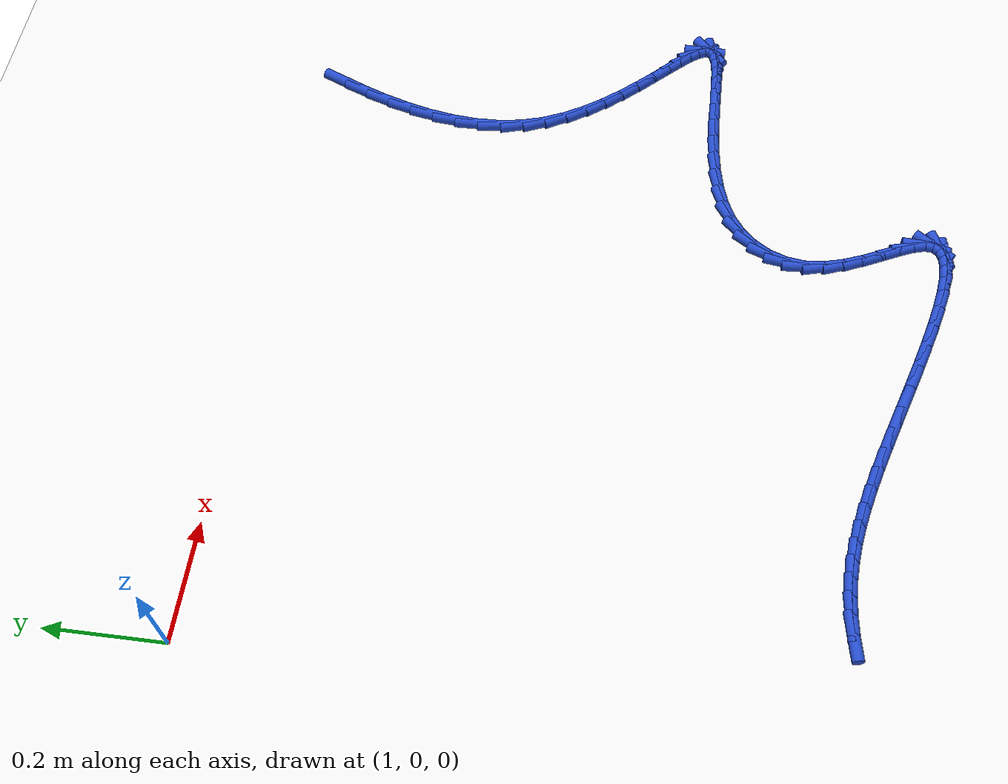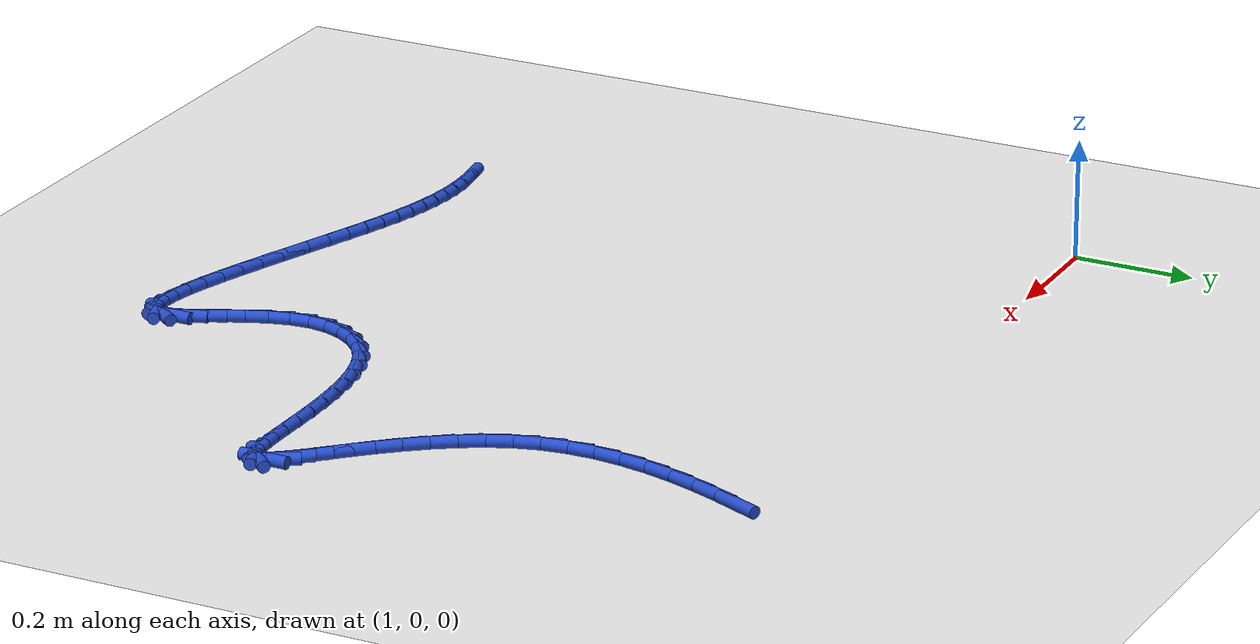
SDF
<sdf version="1.6">
 <world name="default">
  <model name="ground_plane">
   <static>1</static>
   <link name="link">
    <collision name="collision">
     <geometry><plane><normal>0 0 1</normal><size>100 100</size></plane></geometry>
     <surface><friction><ode><mu>100</mu><mu2>50</mu2></ode></friction></surface>
    </collision>
    <visual name="visual">
     <cast_shadows>0</cast_shadows>
     <geometry><plane><normal>0 0 1</normal><size>100 100</size></plane></geometry>
     <material>
      <script><uri>file://media/materials/scripts/gazebo.material</uri><name>Gazebo/WhiteGlow</name></script>
     </material>
    </visual>
   </link>
  </model>
  <model name="line">
   <link name="link_139">
    <pose>2.138984242095941 -0.04756108163555034 0.01 0 1.57 1.1612718402876032</pose>
    <collision name="collision">
     <geometry><cylinder><radius>0.01</radius><length>0.08</length></cylinder></geometry>
    </collision>
    <visual name="visual">
     <material>
      <script><name>Gazebo/Blue</name><uri>file://media/materials/scripts/gazebo.material</uri></script>
     </material>
     <geometry><cylinder><radius>0.01</radius><length>0.08</length></cylinder></geometry>
    </visual>
   </link>
   <link name="link_140">
    <pose>2.1193009865300003 -0.09290731103815346 0.01 0 1.57 1.205928437276966</pose>
    <collision name="collision">
     <geometry><cylinder><radius>0.01</radius><length>0.08</length></cylinder></geometry>
    </collision>
    <visual name="visual">
     <material>
      <script><name>Gazebo/Blue</name><uri>file://media/materials/scripts/gazebo.material</uri></script>
     </material>
     <geometry><cylinder><radius>0.01</radius><length>0.08</length></cylinder></geometry>
    </visual>
   </link>
   <link name="link_141">
    <pose>2.101809403302674 -0.138700312491776 0.01 0 1.57 1.258929012122388</pose>
    <collision name="collision">
     <geometry><cylinder><radius>0.01</radius><length>0.08</length></cylinder></geometry>
    </collision>
    <visual name="visual">
     <material>
      <script><name>Gazebo/Blue</name><uri>file://media/materials/scripts/gazebo.material</uri></script>
     </material>
     <geometry><cylinder><radius>0.01</radius><length>0.08</length></cylinder></geometry>
    </visual>
   </link>
   <link name="link_142">
    <pose>2.086998517815049 -0.18464154216332138 0.01 0 1.57 1.3218458355172413</pose>
    <collision name="collision">
     <geometry><cylinder><radius>0.01</radius><length>0.08</length></cylinder></geometry>
    </collision>
    <visual name="visual">
     <material>
      <script><name>Gazebo/Blue</name><uri>file://media/materials/scripts/gazebo.material</uri></script>
     </material>
     <geometry><cylinder><radius>0.01</radius><length>0.08</length></cylinder></geometry>
    </visual>
   </link>
   <link name="link_143">
    <pose>2.07535735546821 -0.23043245621969186 0.01 0 1.57 1.3965332176177274</pose>
    <collision name="collision">
     <geometry><cylinder><radius>0.01</radius><length>0.08</length></cylinder></geometry>
    </collision>
    <visual name="visual">
     <material>
      <script><name>Gazebo/Blue</name><uri>file://media/materials/scripts/gazebo.material</uri></script>
     </material>
     <geometry><cylinder><radius>0.01</radius><length>0.08</length></cylinder></geometry>
    </visual>
   </link>
   <link name="link_144">
    <pose>2.0673749416632456 -0.27577451082779003 0.01 0 1.57 1.4850185427366982</pose>
    <collision name="collision">
     <geometry><cylinder><radius>0.01</radius><length>0.08</length></cylinder></geometry>
    </collision>
    <visual name="visual">
     <material>
      <script><name>Gazebo/Blue</name><uri>file://media/materials/scripts/gazebo.material</uri></script>
     </material>
     <geometry><cylinder><radius>0.01</radius><length>0.08</length></cylinder></geometry>
    </visual>
   </link>
   <link name="link_145">
    <pose>2.0635403018012397 -0.32036916215451827 0.01 0 1.57 -1.5523785852462642</pose>
    <collision name="collision">
     <geometry><cylinder><radius>0.01</radius><length>0.08</length></cylinder></geometry>
    </collision>
    <visual name="visual">
     <material>
      <script><name>Gazebo/Blue</name><uri>file://media/materials/scripts/gazebo.material</uri></script>
     </material>
     <geometry><cylinder><radius>0.01</radius><length>0.08</length></cylinder></geometry>
    </visual>
   </link>
   <link name="link_146">
    <pose>2.0643424612832795 -0.36391786636678053 0.01 0 1.57 -1.4312497112007905</pose>
    <collision name="collision">
     <geometry><cylinder><radius>0.01</radius><length>0.08</length></cylinder></geometry>
    </collision>
    <visual name="visual">
     <material>
      <script><name>Gazebo/Blue</name><uri>file://media/materials/scripts/gazebo.material</uri></script>
     </material>
     <geometry><cylinder><radius>0.01</radius><length>0.08</length></cylinder></geometry>
    </visual>
   </link>
   <link name="link_147">
    <pose>2.070270445510451 -0.4061220796314765 0.01 0 1.57 -1.2950176132023836</pose>
    <collision name="collision">
     <geometry><cylinder><radius>0.01</radius><length>0.08</length></cylinder></geometry>
    </collision>
    <visual name="visual">
     <material>
      <script><name>Gazebo/Blue</name><uri>file://media/materials/scripts/gazebo.material</uri></script>
     </material>
     <geometry><cylinder><radius>0.01</radius><length>0.08</length></cylinder></geometry>
    </visual>
   </link>
   <link name="link_148">
    <pose>2.081750821995782 -0.44669028536464167 0.01 0 1.57 -1.1662987267644296</pose>
    <collision name="collision">
     <geometry><cylinder><radius>0.01</radius><length>0.08</length></cylinder></geometry>
    </collision>
    <visual name="visual">
     <material>
      <script><name>Gazebo/Blue</name><uri>file://media/materials/scripts/gazebo.material</uri></script>
     </material>
     <geometry><cylinder><radius>0.01</radius><length>0.08</length></cylinder></geometry>
    </visual>
   </link>
   <link name="link_149">
    <pose>2.0983352304117675 -0.48542940668462414 0.01 0 1.57 -1.060438001858014</pose>
    <collision name="collision">
     <geometry><cylinder><radius>0.01</radius><length>0.08</length></cylinder></geometry>
    </collision>
    <visual name="visual">
     <material>
      <script><name>Gazebo/Blue</name><uri>file://media/materials/scripts/gazebo.material</uri></script>
     </material>
     <geometry><cylinder><radius>0.01</radius><length>0.08</length></cylinder></geometry>
    </visual>
   </link>
   <link name="link_150">
    <pose>2.1189310394934 -0.5222188547897701 0.01 0 1.57 -0.9758007278964476</pose>
    <collision name="collision">
     <geometry><cylinder><radius>0.01</radius><length>0.08</length></cylinder></geometry>
    </collision>
    <visual name="visual">
     <material>
      <script><name>Gazebo/Blue</name><uri>file://media/materials/scripts/gazebo.material</uri></script>
     </material>
     <geometry><cylinder><radius>0.01</radius><length>0.08</length></cylinder></geometry>
    </visual>
   </link>
   <link name="link_151">
    <pose>2.1424306500066614 -0.5569397249514952 0.01 0 1.57 -0.9099051102946096</pose>
    <collision name="collision">
     <geometry><cylinder><radius>0.01</radius><length>0.08</length></cylinder></geometry>
    </collision>
    <visual name="visual">
     <material>
      <script><name>Gazebo/Blue</name><uri>file://media/materials/scripts/gazebo.material</uri></script>
     </material>
     <geometry><cylinder><radius>0.01</radius><length>0.08</length></cylinder></geometry>
    </visual>
   </link>
   <link name="link_152">
    <pose>2.1677264627175337 -0.5894731124412147 0.01 0 1.57 -0.8607308293462369</pose>
    <collision name="collision">
     <geometry><cylinder><radius>0.01</radius><length>0.08</length></cylinder></geometry>
    </collision>
    <visual name="visual">
     <material>
      <script><name>Gazebo/Blue</name><uri>file://media/materials/scripts/gazebo.material</uri></script>
     </material>
     <geometry><cylinder><radius>0.01</radius><length>0.08</length></cylinder></geometry>
    </visual>
   </link>
   <link name="link_153">
    <pose>2.193710878391997 -0.6197001125303441 0.01 0 1.57 -0.8272775209543222</pose>
    <collision name="collision">
     <geometry><cylinder><radius>0.01</radius><length>0.08</length></cylinder></geometry>
    </collision>
    <visual name="visual">
     <material>
      <script><name>Gazebo/Blue</name><uri>file://media/materials/scripts/gazebo.material</uri></script>
     </material>
     <geometry><cylinder><radius>0.01</radius><length>0.08</length></cylinder></geometry>
    </visual>
   </link>
   <link name="link_154">
    <pose>2.2192762977960356 -0.647501820490299 0.01 0 1.57 -0.8101147883234594</pose>
    <collision name="collision">
     <geometry><cylinder><radius>0.01</radius><length>0.08</length></cylinder></geometry>
    </collision>
    <visual name="visual">
     <material>
      <script><name>Gazebo/Blue</name><uri>file://media/materials/scripts/gazebo.material</uri></script>
     </material>
     <geometry><cylinder><radius>0.01</radius><length>0.08</length></cylinder></geometry>
    </visual>
   </link>
   <link name="link_155">
    <pose>2.2433151216956295 -0.6727593315924955 0.01 0 1.57 -0.81243262872116</pose>
    <collision name="collision">
     <geometry><cylinder><radius>0.01</radius><length>0.08</length></cylinder></geometry>
    </collision>
    <visual name="visual">
     <material>
      <script><name>Gazebo/Blue</name><uri>file://media/materials/scripts/gazebo.material</uri></script>
     </material>
     <geometry><cylinder><radius>0.01</radius><length>0.08</length></cylinder></geometry>
    </visual>
   </link>
   <link name="link_156">
    <pose>2.26471975085676 -0.6953537411083475 0.01 0 1.57 -0.8426950690854534</pose>
    <collision name="collision">
     <geometry><cylinder><radius>0.01</radius><length>0.08</length></cylinder></geometry>
    </collision>
    <visual name="visual">
     <material>
      <script><name>Gazebo/Blue</name><uri>file://media/materials/scripts/gazebo.material</uri></script>
     </material>
     <geometry><cylinder><radius>0.01</radius><length>0.08</length></cylinder></geometry>
    </visual>
   </link>
   <link name="link_157">
    <pose>2.282382586045409 -0.7151661443092715 0.01 0 1.57 -0.9224002661049109</pose>
    <collision name="collision">
     <geometry><cylinder><radius>0.01</radius><length>0.08</length></cylinder></geometry>
    </collision>
    <visual name="visual">
     <material>
      <script><name>Gazebo/Blue</name><uri>file://media/materials/scripts/gazebo.material</uri></script>
     </material>
     <geometry><cylinder><radius>0.01</radius><length>0.08</length></cylinder></geometry>
    </visual>
   </link>
   <link name="link_158">
    <pose>2.295196028027557 -0.7320776364666826 0.01 0 1.57 -1.1123097089898852</pose>
    <collision name="collision">
     <geometry><cylinder><radius>0.01</radius><length>0.08</length></cylinder></geometry>
    </collision>
    <visual name="visual">
     <material>
      <script><name>Gazebo/Blue</name><uri>file://media/materials/scripts/gazebo.material</uri></script>
     </material>
     <geometry><cylinder><radius>0.01</radius><length>0.08</length></cylinder></geometry>
    </visual>
   </link>
   <link name="link_159">
    <pose>2.3020524775691866 -0.7459693128519963 0.01 0 1.57 1.5514420073694277</pose>
    <collision name="collision">
     <geometry><cylinder><radius>0.01</radius><length>0.08</length></cylinder></geometry>
    </collision>
    <visual name="visual">
     <material>
      <script><name>Gazebo/Blue</name><uri>file://media/materials/scripts/gazebo.material</uri></script>
     </material>
     <geometry><cylinder><radius>0.01</radius><length>0.08</length></cylinder></geometry>
    </visual>
   </link>
   <link name="link_160">
    <pose>2.30184433543628 -0.7567222687366285 0.01 0 1.57 0.7495908297854952</pose>
    <collision name="collision">
     <geometry><cylinder><radius>0.01</radius><length>0.08</length></cylinder></geometry>
    </collision>
    <visual name="visual">
     <material>
      <script><name>Gazebo/Blue</name><uri>file://media/materials/scripts/gazebo.material</uri></script>
     </material>
     <geometry><cylinder><radius>0.01</radius><length>0.08</length></cylinder></geometry>
    </visual>
   </link>
   <link name="link_161">
    <pose>2.293702873798963 -0.7643006056107777 0.01 0 1.57 0.3012627442218821</pose>
    <collision name="collision">
     <geometry><cylinder><radius>0.01</radius><length>0.08</length></cylinder></geometry>
    </collision>
    <visual name="visual">
     <material>
      <script><name>Gazebo/Blue</name><uri>file://media/materials/scripts/gazebo.material</uri></script>
     </material>
     <geometry><cylinder><radius>0.01</radius><length>0.08</length></cylinder></geometry>
    </visual>
   </link>
   <link name="link_162">
    <pose>2.2781219526361554 -0.7691419151346919 0.01 0 1.57 0.12229955663601587</pose>
    <collision name="collision">
     <geometry><cylinder><radius>0.01</radius><length>0.08</length></cylinder></geometry>
    </collision>
    <visual name="visual">
     <material>
      <script><name>Gazebo/Blue</name><uri>file://media/materials/scripts/gazebo.material</uri></script>
     </material>
     <geometry><cylinder><radius>0.01</radius><length>0.08</length></cylinder></geometry>
    </visual>
   </link>
   <link name="link_163">
    <pose>2.256077840291057 -0.7718514226557567 0.01 0 1.57 0.042948717651577886</pose>
    <collision name="collision">
     <geometry><cylinder><radius>0.01</radius><length>0.08</length></cylinder></geometry>
    </collision>
    <visual name="visual">
     <material>
      <script><name>Gazebo/Blue</name><uri>file://media/materials/scripts/gazebo.material</uri></script>
     </material>
     <geometry><cylinder><radius>0.01</radius><length>0.08</length></cylinder></geometry>
    </visual>
   </link>
   <link name="link_164">
    <pose>2.2285473668865983 -0.7730345487360643 0.01 0 1.57 0.00818225079632332</pose>
    <collision name="collision">
     <geometry><cylinder><radius>0.01</radius><length>0.08</length></cylinder></geometry>
    </collision>
    <visual name="visual">
     <material>
      <script><name>Gazebo/Blue</name><uri>file://media/materials/scripts/gazebo.material</uri></script>
     </material>
     <geometry><cylinder><radius>0.01</radius><length>0.08</length></cylinder></geometry>
    </visual>
   </link>
   <link name="link_165">
    <pose>2.196507362545716 -0.7732967139377087 0.01 0 1.57 -0.00150045026485507</pose>
    <collision name="collision">
     <geometry><cylinder><radius>0.01</radius><length>0.08</length></cylinder></geometry>
    </collision>
    <visual name="visual">
     <material>
      <script><name>Gazebo/Blue</name><uri>file://media/materials/scripts/gazebo.material</uri></script>
     </material>
     <geometry><cylinder><radius>0.01</radius><length>0.08</length></cylinder></geometry>
    </visual>
   </link>
   <link name="link_166">
    <pose>2.1609346573913433 -0.7732433388227828 0.01 0 1.57 0.00620275193181548</pose>
    <collision name="collision">
     <geometry><cylinder><radius>0.01</radius><length>0.08</length></cylinder></geometry>
    </collision>
    <visual name="visual">
     <material>
      <script><name>Gazebo/Blue</name><uri>file://media/materials/scripts/gazebo.material</uri></script>
     </material>
     <geometry><cylinder><radius>0.01</radius><length>0.08</length></cylinder></geometry>
    </visual>
   </link>
   <link name="link_167">
    <pose>2.1228060815464107 -0.77347984395338 0.01 0 1.57 0.028495781870062402</pose>
    <collision name="collision">
     <geometry><cylinder><radius>0.01</radius><length>0.08</length></cylinder></geometry>
    </collision>
    <visual name="visual">
     <material>
      <script><name>Gazebo/Blue</name><uri>file://media/materials/scripts/gazebo.material</uri></script>
     </material>
     <geometry><cylinder><radius>0.01</radius><length>0.08</length></cylinder></geometry>
    </visual>
   </link>
   <link name="link_168">
    <pose>2.0830984651338538 -0.7746116498915938 0.01 0 1.57 0.06521472412516442</pose>
    <collision name="collision">
     <geometry><cylinder><radius>0.01</radius><length>0.08</length></cylinder></geometry>
    </collision>
    <visual name="visual">
     <material>
      <script><name>Gazebo/Blue</name><uri>file://media/materials/scripts/gazebo.material</uri></script>
     </material>
     <geometry><cylinder><radius>0.01</radius><length>0.08</length></cylinder></geometry>
    </visual>
   </link>
   <link name="link_169">
    <pose>2.0427886382766047 -0.7772441771995171 0.01 0 1.57 0.11810669136987804</pose>
    <collision name="collision">
     <geometry><cylinder><radius>0.01</radius><length>0.08</length></cylinder></geometry>
    </collision>
    <visual name="visual">
     <material>
      <script><name>Gazebo/Blue</name><uri>file://media/materials/scripts/gazebo.material</uri></script>
     </material>
     <geometry><cylinder><radius>0.01</radius><length>0.08</length></cylinder></geometry>
    </visual>
   </link>
   <link name="link_170">
    <pose>2.002853431097597 -0.7819828464392432 0.01 0 1.57 0.1907449355591697</pose>
    <collision name="collision">
     <geometry><cylinder><radius>0.01</radius><length>0.08</length></cylinder></geometry>
    </collision>
    <visual name="visual">
     <material>
      <script><name>Gazebo/Blue</name><uri>file://media/materials/scripts/gazebo.material</uri></script>
     </material>
     <geometry><cylinder><radius>0.01</radius><length>0.08</length></cylinder></geometry>
    </visual>
   </link>
   <link name="link_171">
    <pose>1.9642696737197638 -0.7894330781728658 0.01 0 1.57 0.28868545377991256</pose>
    <collision name="collision">
     <geometry><cylinder><radius>0.01</radius><length>0.08</length></cylinder></geometry>
    </collision>
    <visual name="visual">
     <material>
      <script><name>Gazebo/Blue</name><uri>file://media/materials/scripts/gazebo.material</uri></script>
     </material>
     <geometry><cylinder><radius>0.01</radius><length>0.08</length></cylinder></geometry>
    </visual>
   </link>
   <link name="link_172">
    <pose>1.9280141962660393 -0.8002002929624779 0.01 0 1.57 0.4193644433876314</pose>
    <collision name="collision">
     <geometry><cylinder><radius>0.01</radius><length>0.08</length></cylinder></geometry>
    </collision>
    <visual name="visual">
     <material>
      <script><name>Gazebo/Blue</name><uri>file://media/materials/scripts/gazebo.material</uri></script>
     </material>
     <geometry><cylinder><radius>0.01</radius><length>0.08</length></cylinder></geometry>
    </visual>
   </link>
   <link name="link_173">
    <pose>1.8950638288593546 -0.8148899113701733 0.01 0 1.57 0.5902079035637142</pose>
    <collision name="collision">
     <geometry><cylinder><radius>0.01</radius><length>0.08</length></cylinder></geometry>
    </collision>
    <visual name="visual">
     <material>
      <script><name>Gazebo/Blue</name><uri>file://media/materials/scripts/gazebo.material</uri></script>
     </material>
     <geometry><cylinder><radius>0.01</radius><length>0.08</length></cylinder></geometry>
    </visual>
   </link>
   <link name="link_174">
    <pose>1.8663920790124962 -0.8340958778388662 0.01 0 1.57 0.7893312351489301</pose>
    <collision name="collision">
     <geometry><cylinder><radius>0.01</radius><length>0.08</length></cylinder></geometry>
    </collision>
    <visual name="visual">
     <material>
      <script><name>Gazebo/Blue</name><uri>file://media/materials/scripts/gazebo.material</uri></script>
     </material>
     <geometry><cylinder><radius>0.01</radius><length>0.08</length></cylinder></geometry>
    </visual>
   </link>
   <link name="link_175">
    <pose>1.8428129498581394 -0.8578612171448793 0.01 0 1.57 0.9952088674003842</pose>
    <collision name="collision">
     <geometry><cylinder><radius>0.01</radius><length>0.08</length></cylinder></geometry>
    </collision>
    <visual name="visual">
     <material>
      <script><name>Gazebo/Blue</name><uri>file://media/materials/scripts/gazebo.material</uri></script>
     </material>
     <geometry><cylinder><radius>0.01</radius><length>0.08</length></cylinder></geometry>
    </visual>
   </link>
   <link name="link_176">
    <pose>1.824913753182548 -0.8854459741808487 0.01 0 1.57 1.207092239291266</pose>
    <collision name="collision">
     <geometry><cylinder><radius>0.01</radius><length>0.08</length></cylinder></geometry>
    </collision>
    <visual name="visual">
     <material>
      <script><name>Gazebo/Blue</name><uri>file://media/materials/scripts/gazebo.material</uri></script>
     </material>
     <geometry><cylinder><radius>0.01</radius><length>0.08</length></cylinder></geometry>
    </visual>
   </link>
   <link name="link_177">
    <pose>1.8132645180997167 -0.9160505004063061 0.01 0 1.57 1.4247217331794786</pose>
    <collision name="collision">
     <geometry><cylinder><radius>0.01</radius><length>0.08</length></cylinder></geometry>
    </collision>
    <visual name="visual">
     <material>
      <script><name>Gazebo/Blue</name><uri>file://media/materials/scripts/gazebo.material</uri></script>
     </material>
     <geometry><cylinder><radius>0.01</radius><length>0.08</length></cylinder></geometry>
    </visual>
   </link>
   <link name="link_178">
    <pose>1.8084352737236444 -0.948875147280785 0.01 0 1.57 -1.4984295755127415</pose>
    <collision name="collision">
     <geometry><cylinder><radius>0.01</radius><length>0.08</length></cylinder></geometry>
    </collision>
    <visual name="visual">
     <material>
      <script><name>Gazebo/Blue</name><uri>file://media/materials/scripts/gazebo.material</uri></script>
     </material>
     <geometry><cylinder><radius>0.01</radius><length>0.08</length></cylinder></geometry>
    </visual>
   </link>
   <link name="link_179">
    <pose>1.810917391059168 -0.9831143921374811 0.01 0 1.57 -1.321929602548544</pose>
    <collision name="collision">
     <geometry><cylinder><radius>0.01</radius><length>0.08</length></cylinder></geometry>
    </collision>
    <visual name="visual">
     <material>
      <script><name>Gazebo/Blue</name><uri>file://media/materials/scripts/gazebo.material</uri></script>
     </material>
     <geometry><cylinder><radius>0.01</radius><length>0.08</length></cylinder></geometry>
    </visual>
   </link>
   <link name="link_180">
    <pose>1.8197459338813193 -1.0178539564197706 0.01 0 1.57 -1.2097174996453592</pose>
    <collision name="collision">
     <geometry><cylinder><radius>0.01</radius><length>0.08</length></cylinder></geometry>
    </collision>
    <visual name="visual">
     <material>
      <script><name>Gazebo/Blue</name><uri>file://media/materials/scripts/gazebo.material</uri></script>
     </material>
     <geometry><cylinder><radius>0.01</radius><length>0.08</length></cylinder></geometry>
    </visual>
   </link>
   <link name="link_181">
    <pose>1.8326722829317676 -1.0520836971217713 0.01 0 1.57 -1.147595283104848</pose>
    <collision name="collision">
     <geometry><cylinder><radius>0.01</radius><length>0.08</length></cylinder></geometry>
    </collision>
    <visual name="visual">
     <material>
      <script><name>Gazebo/Blue</name><uri>file://media/materials/scripts/gazebo.material</uri></script>
     </material>
     <geometry><cylinder><radius>0.01</radius><length>0.08</length></cylinder></geometry>
    </visual>
   </link>
   <link name="link_182">
    <pose>1.8474038580622536 -1.0847901882725723 0.01 0 1.57 -1.1296882985656282</pose>
    <collision name="collision">
     <geometry><cylinder><radius>0.01</radius><length>0.08</length></cylinder></geometry>
    </collision>
    <visual name="visual">
     <material>
      <script><name>Gazebo/Blue</name><uri>file://media/materials/scripts/gazebo.material</uri></script>
     </material>
     <geometry><cylinder><radius>0.01</radius><length>0.08</length></cylinder></geometry>
    </visual>
   </link>
   <link name="link_183">
    <pose>1.8616480791245187 -1.1149600039012655 0.01 0 1.57 -1.1641337636196356</pose>
    <collision name="collision">
     <geometry><cylinder><radius>0.01</radius><length>0.08</length></cylinder></geometry>
    </collision>
    <visual name="visual">
     <material>
      <script><name>Gazebo/Blue</name><uri>file://media/materials/scripts/gazebo.material</uri></script>
     </material>
     <geometry><cylinder><radius>0.01</radius><length>0.08</length></cylinder></geometry>
    </visual>
   </link>
   <link name="link_184">
    <pose>1.8731123659703042 -1.1415797180369422 0.01 0 1.57 -1.2887280177953337</pose>
    <collision name="collision">
     <geometry><cylinder><radius>0.01</radius><length>0.08</length></cylinder></geometry>
    </collision>
    <visual name="visual">
     <material>
      <script><name>Gazebo/Blue</name><uri>file://media/materials/scripts/gazebo.material</uri></script>
     </material>
     <geometry><cylinder><radius>0.01</radius><length>0.08</length></cylinder></geometry>
    </visual>
   </link>
   <link name="link_185">
    <pose>1.8795041384513522 -1.163635904708694 0.01 0 1.57 1.5259556061699697</pose>
    <collision name="collision">
     <geometry><cylinder><radius>0.01</radius><length>0.08</length></cylinder></geometry>
    </collision>
    <visual name="visual">
     <material>
      <script><name>Gazebo/Blue</name><uri>file://media/materials/scripts/gazebo.material</uri></script>
     </material>
     <geometry><cylinder><radius>0.01</radius><length>0.08</length></cylinder></geometry>
    </visual>
   </link>
   <link name="link_186">
    <pose>1.8787595107401662 -1.180230833648661 0.01 0 1.57 0.9446323437910285</pose>
    <collision name="collision">
     <geometry><cylinder><radius>0.01</radius><length>0.08</length></cylinder></geometry>
    </collision>
    <visual name="visual">
     <material>
      <script><name>Gazebo/Blue</name><uri>file://media/materials/scripts/gazebo.material</uri></script>
     </material>
     <geometry><cylinder><radius>0.01</radius><length>0.08</length></cylinder></geometry>
    </visual>
   </link>
   <link name="link_187">
    <pose>1.870675438565727 -1.1914081681986866 0.01 0 1.57 0.40217826662956346</pose>
    <collision name="collision">
     <geometry><cylinder><radius>0.01</radius><length>0.08</length></cylinder></geometry>
    </collision>
    <visual name="visual">
     <material>
      <script><name>Gazebo/Blue</name><uri>file://media/materials/scripts/gazebo.material</uri></script>
     </material>
     <geometry><cylinder><radius>0.01</radius><length>0.08</length></cylinder></geometry>
    </visual>
   </link>
   <link name="link_188">
    <pose>1.8559547052303298 -1.1976698268841568 0.01 0 1.57 0.08940248274466632</pose>
    <collision name="collision">
     <geometry><cylinder><radius>0.01</radius><length>0.08</length></cylinder></geometry>
    </collision>
    <visual name="visual">
     <material>
      <script><name>Gazebo/Blue</name><uri>file://media/materials/scripts/gazebo.material</uri></script>
     </material>
     <geometry><cylinder><radius>0.01</radius><length>0.08</length></cylinder></geometry>
    </visual>
   </link>
   <link name="link_189">
    <pose>1.835306151954565 -1.1995207929113554 0.01 0 1.57 -0.07926686404818428</pose>
    <collision name="collision">
     <geometry><cylinder><radius>0.01</radius><length>0.08</length></cylinder></geometry>
    </collision>
    <visual name="visual">
     <material>
      <script><name>Gazebo/Blue</name><uri>file://media/materials/scripts/gazebo.material</uri></script>
     </material>
     <geometry><cylinder><radius>0.01</radius><length>0.08</length></cylinder></geometry>
    </visual>
   </link>
   <link name="link_190">
    <pose>1.8094386199590236 -1.1974660494865668 0.01 0 1.57 -0.17769399129505595</pose>
    <collision name="collision">
     <geometry><cylinder><radius>0.01</radius><length>0.08</length></cylinder></geometry>
    </collision>
    <visual name="visual">
     <material>
      <script><name>Gazebo/Blue</name><uri>file://media/materials/scripts/gazebo.material</uri></script>
     </material>
     <geometry><cylinder><radius>0.01</radius><length>0.08</length></cylinder></geometry>
    </visual>
   </link>
   <link name="link_191">
    <pose>1.7790609504642982 -1.1920105798160758 0.01 0 1.57 -0.23964245860409442</pose>
    <collision name="collision">
     <geometry><cylinder><radius>0.01</radius><length>0.08</length></cylinder></geometry>
    </collision>
    <visual name="visual">
     <material>
      <script><name>Gazebo/Blue</name><uri>file://media/materials/scripts/gazebo.material</uri></script>
     </material>
     <geometry><cylinder><radius>0.01</radius><length>0.08</length></cylinder></geometry>
    </visual>
   </link>
   <link name="link_192">
    <pose>1.744881984690981 -1.1836593671061668 0.01 0 1.57 -0.28060490730897714</pose>
    <collision name="collision">
     <geometry><cylinder><radius>0.01</radius><length>0.08</length></cylinder></geometry>
    </collision>
    <visual name="visual">
     <material>
      <script><name>Gazebo/Blue</name><uri>file://media/materials/scripts/gazebo.material</uri></script>
     </material>
     <geometry><cylinder><radius>0.01</radius><length>0.08</length></cylinder></geometry>
    </visual>
   </link>
   <link name="link_193">
    <pose>1.7076105638596621 -1.1729173945631237 0.01 0 1.57 -0.30828720845784297</pose>
    <collision name="collision">
     <geometry><cylinder><radius>0.01</radius><length>0.08</length></cylinder></geometry>
    </collision>
    <visual name="visual">
     <material>
      <script><name>Gazebo/Blue</name><uri>file://media/materials/scripts/gazebo.material</uri></script>
     </material>
     <geometry><cylinder><radius>0.01</radius><length>0.08</length></cylinder></geometry>
    </visual>
   </link>
   <link name="link_194">
    <pose>1.6679555291909332 -1.1602896453932312 0.01 0 1.57 -0.32679276347405656</pose>
    <collision name="collision">
     <geometry><cylinder><radius>0.01</radius><length>0.08</length></cylinder></geometry>
    </collision>
    <visual name="visual">
     <material>
      <script><name>Gazebo/Blue</name><uri>file://media/materials/scripts/gazebo.material</uri></script>
     </material>
     <geometry><cylinder><radius>0.01</radius><length>0.08</length></cylinder></geometry>
    </visual>
   </link>
   <link name="link_195">
    <pose>1.6266257219053857 -1.146281102802773 0.01 0 1.57 -0.3383766137646771</pose>
    <collision name="collision">
     <geometry><cylinder><radius>0.01</radius><length>0.08</length></cylinder></geometry>
    </collision>
    <visual name="visual">
     <material>
      <script><name>Gazebo/Blue</name><uri>file://media/materials/scripts/gazebo.material</uri></script>
     </material>
     <geometry><cylinder><radius>0.01</radius><length>0.08</length></cylinder></geometry>
    </visual>
   </link>
   <link name="link_196">
    <pose>1.5843299832236115 -1.1313967499980349 0.01 0 1.57 -0.34422684823703786</pose>
    <collision name="collision">
     <geometry><cylinder><radius>0.01</radius><length>0.08</length></cylinder></geometry>
    </collision>
    <visual name="visual">
     <material>
      <script><name>Gazebo/Blue</name><uri>file://media/materials/scripts/gazebo.material</uri></script>
     </material>
     <geometry><cylinder><radius>0.01</radius><length>0.08</length></cylinder></geometry>
    </visual>
   </link>
   <link name="link_197">
    <pose>1.5417771543662022 -1.1161415701853001 0.01 0 1.57 -0.34481176620392817</pose>
    <collision name="collision">
     <geometry><cylinder><radius>0.01</radius><length>0.08</length></cylinder></geometry>
    </collision>
    <visual name="visual">
     <material>
      <script><name>Gazebo/Blue</name><uri>file://media/materials/scripts/gazebo.material</uri></script>
     </material>
     <geometry><cylinder><radius>0.01</radius><length>0.08</length></cylinder></geometry>
    </visual>
   </link>
   <link name="link_198">
    <pose>1.4996760765537482 -1.1010205465708534 0.01 0 1.57 -0.33999402272262613</pose>
    <collision name="collision">
     <geometry><cylinder><radius>0.01</radius><length>0.08</length></cylinder></geometry>
    </collision>
    <visual name="visual">
     <material>
      <script><name>Gazebo/Blue</name><uri>file://media/materials/scripts/gazebo.material</uri></script>
     </material>
     <geometry><cylinder><radius>0.01</radius><length>0.08</length></cylinder></geometry>
    </visual>
   </link>
   <link name="link_199">
    <pose>1.4587355910068407 -1.0865386623609785 0.01 0 1.57 -0.3289677872773279</pose>
    <collision name="collision">
     <geometry><cylinder><radius>0.01</radius><length>0.08</length></cylinder></geometry>
    </collision>
    <visual name="visual">
     <material>
      <script><name>Gazebo/Blue</name><uri>file://media/materials/scripts/gazebo.material</uri></script>
     </material>
     <geometry><cylinder><radius>0.01</radius><length>0.08</length></cylinder></geometry>
    </visual>
   </link>
   <link name="link_200">
    <pose>1.4196645389460736 -1.0732009007619607 0.01 0 1.57 -0.31035184827288675</pose>
    <collision name="collision">
     <geometry><cylinder><radius>0.01</radius><length>0.08</length></cylinder></geometry>
    </collision>
    <visual name="visual">
     <material>
      <script><name>Gazebo/Blue</name><uri>file://media/materials/scripts/gazebo.material</uri></script>
     </material>
     <geometry><cylinder><radius>0.01</radius><length>0.08</length></cylinder></geometry>
    </visual>
   </link>
   <link name="link_201">
    <pose>1.3830140668640527 -1.0614465262775927 0.01 0 1.57 -0.2838472752500122</pose>
    <collision name="collision">
     <geometry><cylinder><radius>0.01</radius><length>0.08</length></cylinder></geometry>
    </collision>
    <visual name="visual">
     <material>
      <script><name>Gazebo/Blue</name><uri>file://media/materials/scripts/gazebo.material</uri></script>
     </material>
     <geometry><cylinder><radius>0.01</radius><length>0.08</length></cylinder></geometry>
    </visual>
   </link>
   <link name="link_202">
    <pose>1.3485899522313474 -1.0514041735914303 0.01 0 1.57 -0.24902609256163322</pose>
    <collision name="collision">
     <geometry><cylinder><radius>0.01</radius><length>0.08</length></cylinder></geometry>
    </collision>
    <visual name="visual">
     <material>
      <script><name>Gazebo/Blue</name><uri>file://media/materials/scripts/gazebo.material</uri></script>
     </material>
     <geometry><cylinder><radius>0.01</radius><length>0.08</length></cylinder></geometry>
    </visual>
   </link>
   <link name="link_203">
    <pose>1.3159779620565701 -1.0431107888297828 0.01 0 1.57 -0.20553478692828506</pose>
    <collision name="collision">
     <geometry><cylinder><radius>0.01</radius><length>0.08</length></cylinder></geometry>
    </collision>
    <visual name="visual">
     <material>
      <script><name>Gazebo/Blue</name><uri>file://media/materials/scripts/gazebo.material</uri></script>
     </material>
     <geometry><cylinder><radius>0.01</radius><length>0.08</length></cylinder></geometry>
    </visual>
   </link>
   <link name="link_204">
    <pose>1.2847638312752574 -1.0366033047526217 0.01 0 1.57 -0.1537413313115407</pose>
    <collision name="collision">
     <geometry><cylinder><radius>0.01</radius><length>0.08</length></cylinder></geometry>
    </collision>
    <visual name="visual">
     <material>
      <script><name>Gazebo/Blue</name><uri>file://media/materials/scripts/gazebo.material</uri></script>
     </material>
     <geometry><cylinder><radius>0.01</radius><length>0.08</length></cylinder></geometry>
    </visual>
   </link>
   <link name="link_205">
    <pose>1.2545332948229444 -1.0319186541199181 0.01 0 1.57 -0.09495195870451445</pose>
    <collision name="collision">
     <geometry><cylinder><radius>0.01</radius><length>0.08</length></cylinder></geometry>
    </collision>
    <visual name="visual">
     <material>
      <script><name>Gazebo/Blue</name><uri>file://media/materials/scripts/gazebo.material</uri></script>
     </material>
     <geometry><cylinder><radius>0.01</radius><length>0.08</length></cylinder></geometry>
    </visual>
   </link>
   <link name="link_206">
    <pose>1.2248720876351662 -1.0290937696916427 0.01 0 1.57 -0.031446993227129016</pose>
    <collision name="collision">
     <geometry><cylinder><radius>0.01</radius><length>0.08</length></cylinder></geometry>
    </collision>
    <visual name="visual">
     <material>
      <script><name>Gazebo/Blue</name><uri>file://media/materials/scripts/gazebo.material</uri></script>
     </material>
     <geometry><cylinder><radius>0.01</radius><length>0.08</length></cylinder></geometry>
    </visual>
   </link>
   <link name="link_207">
    <pose>1.1953659446474583 -1.028165584227767 0.01 0 1.57 0.03376625223305583</pose>
    <collision name="collision">
     <geometry><cylinder><radius>0.01</radius><length>0.08</length></cylinder></geometry>
    </collision>
    <visual name="visual">
     <material>
      <script><name>Gazebo/Blue</name><uri>file://media/materials/scripts/gazebo.material</uri></script>
     </material>
     <geometry><cylinder><radius>0.01</radius><length>0.08</length></cylinder></geometry>
    </visual>
   </link>
   <link name="link_208">
    <pose>1.165600600795355 -1.0291710304882618 0.01 0 1.57 0.09746051819499807</pose>
    <collision name="collision">
     <geometry><cylinder><radius>0.01</radius><length>0.08</length></cylinder></geometry>
    </collision>
    <visual name="visual">
     <material>
      <script><name>Gazebo/Blue</name><uri>file://media/materials/scripts/gazebo.material</uri></script>
     </material>
     <geometry><cylinder><radius>0.01</radius><length>0.08</length></cylinder></geometry>
    </visual>
   </link>
   <link name="link_209">
    <pose>1.1351617910143939 -1.0321470412330984 0.01 0 1.57 0.16531580614451574</pose>
    <collision name="collision">
     <geometry><cylinder><radius>0.01</radius><length>0.08</length></cylinder></geometry>
    </collision>
    <visual name="visual">
     <material>
      <script><name>Gazebo/Blue</name><uri>file://media/materials/scripts/gazebo.material</uri></script>
     </material>
     <geometry><cylinder><radius>0.01</radius><length>0.08</length></cylinder></geometry>
    </visual>
   </link>
  </model>
 </world>
</sdf>
